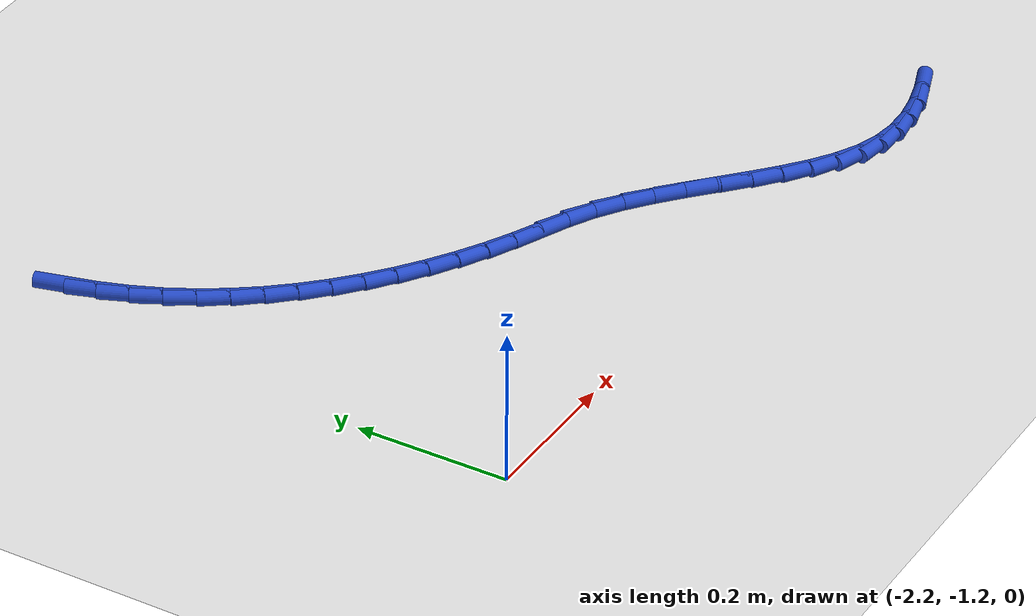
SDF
<sdf version="1.6">
 <world name="default">
  <model name="ground_plane">
   <static>1</static>
   <link name="link">
    <collision name="collision">
     <geometry><plane><normal>0 0 1</normal><size>100 100</size></plane></geometry>
     <surface><friction><ode><mu>100</mu><mu2>50</mu2></ode></friction></surface>
    </collision>
    <visual name="visual">
     <cast_shadows>0</cast_shadows>
     <geometry><plane><normal>0 0 1</normal><size>100 100</size></plane></geometry>
     <material>
      <script><uri>file://media/materials/scripts/gazebo.material</uri><name>Gazebo/WhiteGlow</name></script>
     </material>
    </visual>
   </link>
  </model>
  <model name="line">
   <link name="link_113">
    <pose>-2.1390536295366305 -0.5502160568025309 0.01 0 1.57 -1.3198360032456884</pose>
    <collision name="collision">
     <geometry><cylinder><radius>0.01</radius><length>0.08</length></cylinder></geometry>
    </collision>
    <visual name="visual">
     <material>
      <script><name>Gazebo/Blue</name><uri>file://media/materials/scripts/gazebo.material</uri></script>
     </material>
     <geometry><cylinder><radius>0.01</radius><length>0.08</length></cylinder></geometry>
    </visual>
   </link>
   <link name="link_114">
    <pose>-2.1291025658606837 -0.5890320397205643 0.01 0 1.57 -1.2434048399873752</pose>
    <collision name="collision">
     <geometry><cylinder><radius>0.01</radius><length>0.08</length></cylinder></geometry>
    </collision>
    <visual name="visual">
     <material>
      <script><name>Gazebo/Blue</name><uri>file://media/materials/scripts/gazebo.material</uri></script>
     </material>
     <geometry><cylinder><radius>0.01</radius><length>0.08</length></cylinder></geometry>
    </visual>
   </link>
   <link name="link_115">
    <pose>-2.1162150986329964 -0.6269795583266244 0.01 0 1.57 -1.1665712712660286</pose>
    <collision name="collision">
     <geometry><cylinder><radius>0.01</radius><length>0.08</length></cylinder></geometry>
    </collision>
    <visual name="visual">
     <material>
      <script><name>Gazebo/Blue</name><uri>file://media/materials/scripts/gazebo.material</uri></script>
     </material>
     <geometry><cylinder><radius>0.01</radius><length>0.08</length></cylinder></geometry>
    </visual>
   </link>
   <link name="link_116">
    <pose>-2.100464324711555 -0.6637991460991701 0.01 0 1.57 -1.0888549440968247</pose>
    <collision name="collision">
     <geometry><cylinder><radius>0.01</radius><length>0.08</length></cylinder></geometry>
    </collision>
    <visual name="visual">
     <material>
      <script><name>Gazebo/Blue</name><uri>file://media/materials/scripts/gazebo.material</uri></script>
     </material>
     <geometry><cylinder><radius>0.01</radius><length>0.08</length></cylinder></geometry>
    </visual>
   </link>
   <link name="link_117">
    <pose>-2.081927169762514 -0.6992375545358509 0.01 0 1.57 -1.0126331211393604</pose>
    <collision name="collision">
     <geometry><cylinder><radius>0.01</radius><length>0.08</length></cylinder></geometry>
    </collision>
    <visual name="visual">
     <material>
      <script><name>Gazebo/Blue</name><uri>file://media/materials/scripts/gazebo.material</uri></script>
     </material>
     <geometry><cylinder><radius>0.01</radius><length>0.08</length></cylinder></geometry>
    </visual>
   </link>
   <link name="link_118">
    <pose>-2.0607498823545285 -0.7331541161566903 0.01 0 1.57 -0.9403399983962665</pose>
    <collision name="collision">
     <geometry><cylinder><radius>0.01</radius><length>0.08</length></cylinder></geometry>
    </collision>
    <visual name="visual">
     <material>
      <script><name>Gazebo/Blue</name><uri>file://media/materials/scripts/gazebo.material</uri></script>
     </material>
     <geometry><cylinder><radius>0.01</radius><length>0.08</length></cylinder></geometry>
    </visual>
   </link>
   <link name="link_119">
    <pose>-2.037138988587857 -0.7655060547397208 0.01 0 1.57 -0.87198755587019</pose>
    <collision name="collision">
     <geometry><cylinder><radius>0.01</radius><length>0.08</length></cylinder></geometry>
    </collision>
    <visual name="visual">
     <material>
      <script><name>Gazebo/Blue</name><uri>file://media/materials/scripts/gazebo.material</uri></script>
     </material>
     <geometry><cylinder><radius>0.01</radius><length>0.08</length></cylinder></geometry>
    </visual>
   </link>
   <link name="link_120">
    <pose>-2.011303023203468 -0.7962538561136966 0.01 0 1.57 -0.807370071144574</pose>
    <collision name="collision">
     <geometry><cylinder><radius>0.01</radius><length>0.08</length></cylinder></geometry>
    </collision>
    <visual name="visual">
     <material>
      <script><name>Gazebo/Blue</name><uri>file://media/materials/scripts/gazebo.material</uri></script>
     </material>
     <geometry><cylinder><radius>0.01</radius><length>0.08</length></cylinder></geometry>
    </visual>
   </link>
   <link name="link_121">
    <pose>-1.9834505209423285 -0.8253580061073732 0.01 0 1.57 -0.7461845413763928</pose>
    <collision name="collision">
     <geometry><cylinder><radius>0.01</radius><length>0.08</length></cylinder></geometry>
    </collision>
    <visual name="visual">
     <material>
      <script><name>Gazebo/Blue</name><uri>file://media/materials/scripts/gazebo.material</uri></script>
     </material>
     <geometry><cylinder><radius>0.01</radius><length>0.08</length></cylinder></geometry>
    </visual>
   </link>
   <link name="link_122">
    <pose>-1.9537900165454045 -0.8527789905495058 0.01 0 1.57 -0.6880621482035215</pose>
    <collision name="collision">
     <geometry><cylinder><radius>0.01</radius><length>0.08</length></cylinder></geometry>
    </collision>
    <visual name="visual">
     <material>
      <script><name>Gazebo/Blue</name><uri>file://media/materials/scripts/gazebo.material</uri></script>
     </material>
     <geometry><cylinder><radius>0.01</radius><length>0.08</length></cylinder></geometry>
    </visual>
   </link>
   <link name="link_123">
    <pose>-1.922530044753664 -0.8784772952688501 0.01 0 1.57 -0.6325917606688793</pose>
    <collision name="collision">
     <geometry><cylinder><radius>0.01</radius><length>0.08</length></cylinder></geometry>
    </collision>
    <visual name="visual">
     <material>
      <script><name>Gazebo/Blue</name><uri>file://media/materials/scripts/gazebo.material</uri></script>
     </material>
     <geometry><cylinder><radius>0.01</radius><length>0.08</length></cylinder></geometry>
    </visual>
   </link>
   <link name="link_124">
    <pose>-1.889879140308073 -0.9024134060941612 0.01 0 1.57 -0.5793356901839916</pose>
    <collision name="collision">
     <geometry><cylinder><radius>0.01</radius><length>0.08</length></cylinder></geometry>
    </collision>
    <visual name="visual">
     <material>
      <script><name>Gazebo/Blue</name><uri>file://media/materials/scripts/gazebo.material</uri></script>
     </material>
     <geometry><cylinder><radius>0.01</radius><length>0.08</length></cylinder></geometry>
    </visual>
   </link>
   <link name="link_125">
    <pose>-1.8560458379495999 -0.9245478088541941 0.01 0 1.57 -0.5278386374412396</pose>
    <collision name="collision">
     <geometry><cylinder><radius>0.01</radius><length>0.08</length></cylinder></geometry>
    </collision>
    <visual name="visual">
     <material>
      <script><name>Gazebo/Blue</name><uri>file://media/materials/scripts/gazebo.material</uri></script>
     </material>
     <geometry><cylinder><radius>0.01</radius><length>0.08</length></cylinder></geometry>
    </visual>
   </link>
   <link name="link_126">
    <pose>-1.82123867241921 -0.9448409893777052 0.01 0 1.57 -0.477630955910507</pose>
    <collision name="collision">
     <geometry><cylinder><radius>0.01</radius><length>0.08</length></cylinder></geometry>
    </collision>
    <visual name="visual">
     <material>
      <script><name>Gazebo/Blue</name><uri>file://media/materials/scripts/gazebo.material</uri></script>
     </material>
     <geometry><cylinder><radius>0.01</radius><length>0.08</length></cylinder></geometry>
    </visual>
   </link>
   <link name="link_127">
    <pose>-1.7856661784578707 -0.9632534334934495 0.01 0 1.57 -0.4282994107728028</pose>
    <collision name="collision">
     <geometry><cylinder><radius>0.01</radius><length>0.08</length></cylinder></geometry>
    </collision>
    <visual name="visual">
     <material>
      <script><name>Gazebo/Blue</name><uri>file://media/materials/scripts/gazebo.material</uri></script>
     </material>
     <geometry><cylinder><radius>0.01</radius><length>0.08</length></cylinder></geometry>
    </visual>
   </link>
   <link name="link_128">
    <pose>-1.749537575025894 -0.9797484656870911 0.01 0 1.57 -0.4059025063697197</pose>
    <collision name="collision">
     <geometry><cylinder><radius>0.01</radius><length>0.08</length></cylinder></geometry>
    </collision>
    <visual name="visual">
     <material>
      <script><name>Gazebo/Blue</name><uri>file://media/materials/scripts/gazebo.material</uri></script>
     </material>
     <geometry><cylinder><radius>0.01</radius><length>0.08</length></cylinder></geometry>
    </visual>
   </link>
   <link name="link_129">
    <pose>-1.7133099922774506 -0.9953179326994118 0.01 0 1.57 -0.4742117127549134</pose>
    <collision name="collision">
     <geometry><cylinder><radius>0.01</radius><length>0.08</length></cylinder></geometry>
    </collision>
    <visual name="visual">
     <material>
      <script><name>Gazebo/Blue</name><uri>file://media/materials/scripts/gazebo.material</uri></script>
     </material>
     <geometry><cylinder><radius>0.01</radius><length>0.08</length></cylinder></geometry>
    </visual>
   </link>
   <link name="link_130">
    <pose>-1.6780327230539298 -1.013424899403004 0.01 0 1.57 -0.5810848264554602</pose>
    <collision name="collision">
     <geometry><cylinder><radius>0.01</radius><length>0.08</length></cylinder></geometry>
    </collision>
    <visual name="visual">
     <material>
      <script><name>Gazebo/Blue</name><uri>file://media/materials/scripts/gazebo.material</uri></script>
     </material>
     <geometry><cylinder><radius>0.01</radius><length>0.08</length></cylinder></geometry>
    </visual>
   </link>
   <link name="link_131">
    <pose>-1.6442007108131587 -1.0356430596893638 0.01 0 1.57 -0.6608303821256384</pose>
    <collision name="collision">
     <geometry><cylinder><radius>0.01</radius><length>0.08</length></cylinder></geometry>
    </collision>
    <visual name="visual">
     <material>
      <script><name>Gazebo/Blue</name><uri>file://media/materials/scripts/gazebo.material</uri></script>
     </material>
     <geometry><cylinder><radius>0.01</radius><length>0.08</length></cylinder></geometry>
    </visual>
   </link>
   <link name="link_132">
    <pose>-1.6115846194840031 -1.060999993859186 0.01 0 1.57 -0.7130768643125104</pose>
    <collision name="collision">
     <geometry><cylinder><radius>0.01</radius><length>0.08</length></cylinder></geometry>
    </collision>
    <visual name="visual">
     <material>
      <script><name>Gazebo/Blue</name><uri>file://media/materials/scripts/gazebo.material</uri></script>
     </material>
     <geometry><cylinder><radius>0.01</radius><length>0.08</length></cylinder></geometry>
    </visual>
   </link>
   <link name="link_133">
    <pose>-1.5799169525056758 -1.0883891338112668 0.01 0 1.57 -0.7403713962276797</pose>
    <collision name="collision">
     <geometry><cylinder><radius>0.01</radius><length>0.08</length></cylinder></geometry>
    </collision>
    <visual name="visual">
     <material>
      <script><name>Gazebo/Blue</name><uri>file://media/materials/scripts/gazebo.material</uri></script>
     </material>
     <geometry><cylinder><radius>0.01</radius><length>0.08</length></cylinder></geometry>
    </visual>
   </link>
   <link name="link_134">
    <pose>-1.548930213317389 -1.1167039114443986 0.01 0 1.57 -0.7438690149332057</pose>
    <collision name="collision">
     <geometry><cylinder><radius>0.01</radius><length>0.08</length></cylinder></geometry>
    </collision>
    <visual name="visual">
     <material>
      <script><name>Gazebo/Blue</name><uri>file://media/materials/scripts/gazebo.material</uri></script>
     </material>
     <geometry><cylinder><radius>0.01</radius><length>0.08</length></cylinder></geometry>
    </visual>
   </link>
   <link name="link_135">
    <pose>-1.5183569053583557 -1.1448377586573777 0.01 0 1.57 -0.722954709300934</pose>
    <collision name="collision">
     <geometry><cylinder><radius>0.01</radius><length>0.08</length></cylinder></geometry>
    </collision>
    <visual name="visual">
     <material>
      <script><name>Gazebo/Blue</name><uri>file://media/materials/scripts/gazebo.material</uri></script>
     </material>
     <geometry><cylinder><radius>0.01</radius><length>0.08</length></cylinder></geometry>
    </visual>
   </link>
   <link name="link_136">
    <pose>-1.4879295320677883 -1.1716841073489985 0.01 0 1.57 -0.6750030400688996</pose>
    <collision name="collision">
     <geometry><cylinder><radius>0.01</radius><length>0.08</length></cylinder></geometry>
    </collision>
    <visual name="visual">
     <material>
      <script><name>Gazebo/Blue</name><uri>file://media/materials/scripts/gazebo.material</uri></script>
     </material>
     <geometry><cylinder><radius>0.01</radius><length>0.08</length></cylinder></geometry>
    </visual>
   </link>
   <link name="link_137">
    <pose>-1.4573805968848994 -1.1961363894180548 0.01 0 1.57 -0.5952692108084777</pose>
    <collision name="collision">
     <geometry><cylinder><radius>0.01</radius><length>0.08</length></cylinder></geometry>
    </collision>
    <visual name="visual">
     <material>
      <script><name>Gazebo/Blue</name><uri>file://media/materials/scripts/gazebo.material</uri></script>
     </material>
     <geometry><cylinder><radius>0.01</radius><length>0.08</length></cylinder></geometry>
    </visual>
   </link>
   <link name="link_138">
    <pose>-1.426442603248902 -1.2170880367633423 0.01 0 1.57 -0.4774062234436212</pose>
    <collision name="collision">
     <geometry><cylinder><radius>0.01</radius><length>0.08</length></cylinder></geometry>
    </collision>
    <visual name="visual">
     <material>
      <script><name>Gazebo/Blue</name><uri>file://media/materials/scripts/gazebo.material</uri></script>
     </material>
     <geometry><cylinder><radius>0.01</radius><length>0.08</length></cylinder></geometry>
    </visual>
   </link>
   <link name="link_139">
    <pose>-1.394848054599009 -1.2334324812836546 0.01 0 1.57 -0.3168295428205625</pose>
    <collision name="collision">
     <geometry><cylinder><radius>0.01</radius><length>0.08</length></cylinder></geometry>
    </collision>
    <visual name="visual">
     <material>
      <script><name>Gazebo/Blue</name><uri>file://media/materials/scripts/gazebo.material</uri></script>
     </material>
     <geometry><cylinder><radius>0.01</radius><length>0.08</length></cylinder></geometry>
    </visual>
   </link>
   <link name="link_140">
    <pose>-1.3623358286639622 -1.2440924095789878 0.01 0 1.57 -0.13870044455837943</pose>
    <collision name="collision">
     <geometry><cylinder><radius>0.01</radius><length>0.08</length></cylinder></geometry>
    </collision>
    <visual name="visual">
     <material>
      <script><name>Gazebo/Blue</name><uri>file://media/materials/scripts/gazebo.material</uri></script>
     </material>
     <geometry><cylinder><radius>0.01</radius><length>0.08</length></cylinder></geometry>
    </visual>
   </link>
   <link name="link_141">
    <pose>-1.3288150391634705 -1.2487718036431907 0.01 0 1.57 0.02178795829995397</pose>
    <collision name="collision">
     <geometry><cylinder><radius>0.01</radius><length>0.08</length></cylinder></geometry>
    </collision>
    <visual name="visual">
     <material>
      <script><name>Gazebo/Blue</name><uri>file://media/materials/scripts/gazebo.material</uri></script>
     </material>
     <geometry><cylinder><radius>0.01</radius><length>0.08</length></cylinder></geometry>
    </visual>
   </link>
   <link name="link_142">
    <pose>-1.294379298752291 -1.2480214004207388 0.01 0 1.57 0.15720085282132865</pose>
    <collision name="collision">
     <geometry><cylinder><radius>0.01</radius><length>0.08</length></cylinder></geometry>
    </collision>
    <visual name="visual">
     <material>
      <script><name>Gazebo/Blue</name><uri>file://media/materials/scripts/gazebo.material</uri></script>
     </material>
     <geometry><cylinder><radius>0.01</radius><length>0.08</length></cylinder></geometry>
    </visual>
   </link>
   <link name="link_143">
    <pose>-1.259131452753572 -1.242434310041978 0.01 0 1.57 0.2668779550395605</pose>
    <collision name="collision">
     <geometry><cylinder><radius>0.01</radius><length>0.08</length></cylinder></geometry>
    </collision>
    <visual name="visual">
     <material>
      <script><name>Gazebo/Blue</name><uri>file://media/materials/scripts/gazebo.material</uri></script>
     </material>
     <geometry><cylinder><radius>0.01</radius><length>0.08</length></cylinder></geometry>
    </visual>
   </link>
   <link name="link_144">
    <pose>-1.2231743464904614 -1.2326036426372546 0.01 0 1.57 0.3532399247037168</pose>
    <collision name="collision">
     <geometry><cylinder><radius>0.01</radius><length>0.08</length></cylinder></geometry>
    </collision>
    <visual name="visual">
     <material>
      <script><name>Gazebo/Blue</name><uri>file://media/materials/scripts/gazebo.material</uri></script>
     </material>
     <geometry><cylinder><radius>0.01</radius><length>0.08</length></cylinder></geometry>
    </visual>
   </link>
  </model>
 </world>
</sdf>
